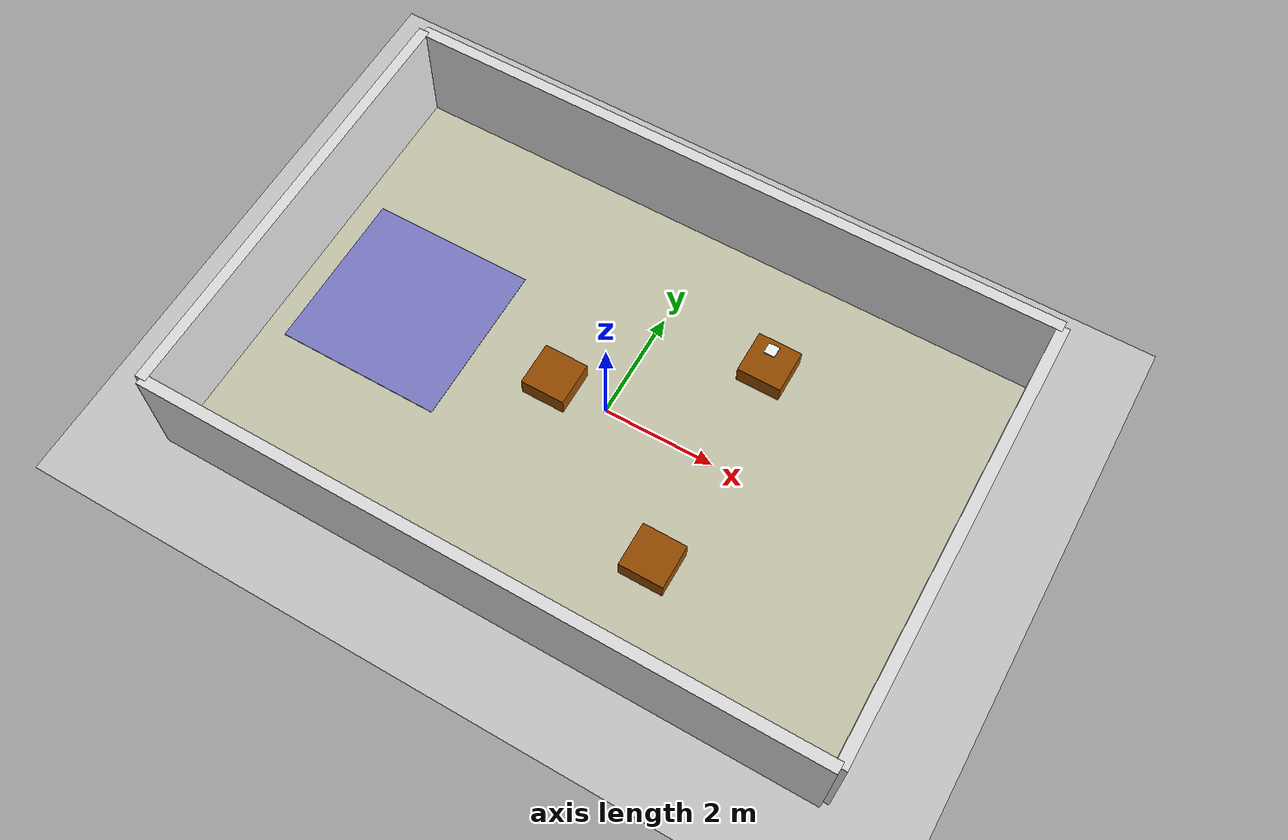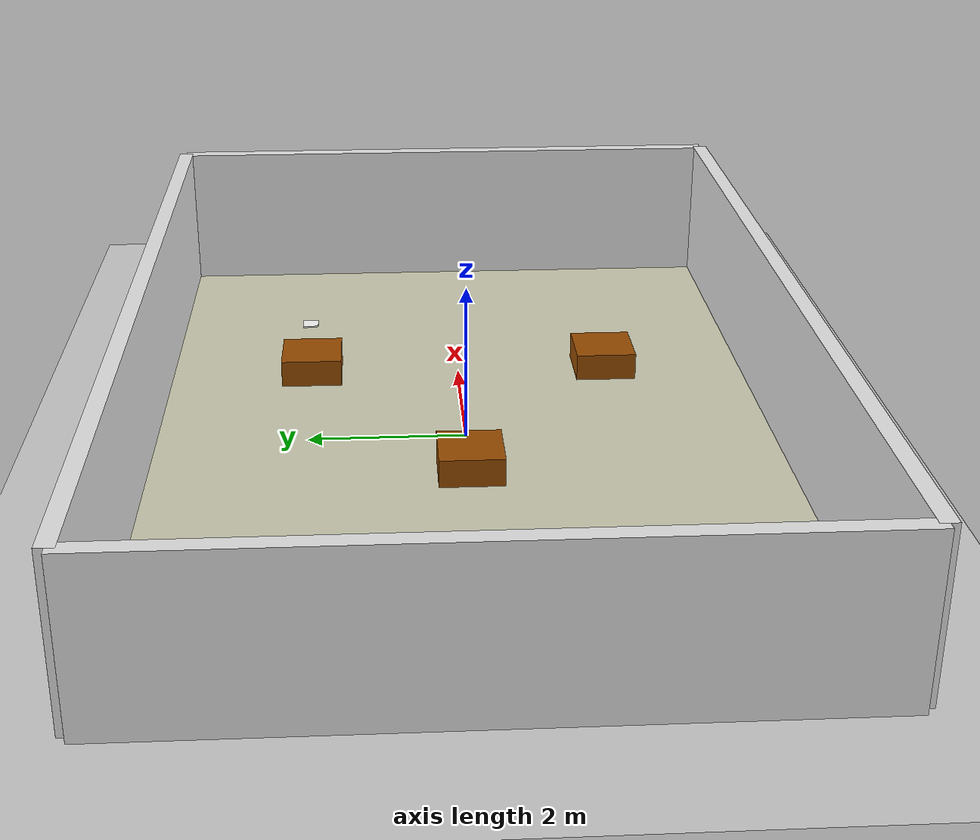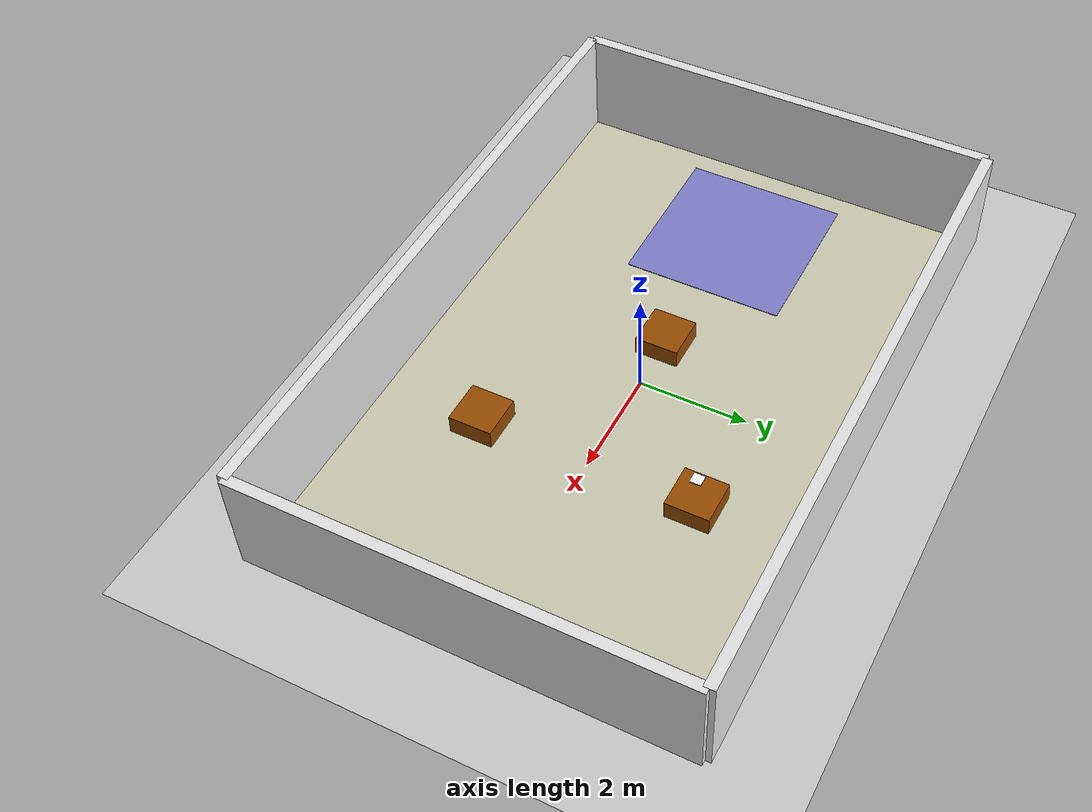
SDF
<?xml version="1.0" ?>
<sdf version="1.6">
  <world name="restaurant">
    <!-- 基本設定 -->
    <include>
      <uri>model://ground_plane</uri>
    </include>

    <include>
      <uri>model://sun</uri>
    </include>

    <!-- 設定物理引擎 -->
    <physics type="ode">
      <real_time_update_rate>1000.0</real_time_update_rate>
      <max_step_size>0.001</max_step_size>
      <real_time_factor>1</real_time_factor>
    </physics>

    <!-- 相機位置 -->
    <gui fullscreen='0'>
      <camera name='user_camera'>
        <pose>7.0 -7.0 5.0 0 0.5 2.3</pose>
        <view_controller>orbit</view_controller>
      </camera>
    </gui>

    <!-- 餐廳地板 -->
    <model name="restaurant_floor">
      <static>true</static>
      <pose>0 0 0.01 0 0 0</pose>
      <link name="floor">
        <collision name="collision">
          <geometry>
            <box>
              <size>12 8 0.02</size>
            </box>
          </geometry>
        </collision>
        <visual name="visual">
          <geometry>
            <box>
              <size>12 8 0.02</size>
            </box>
          </geometry>
          <material>
            <ambient>0.8 0.8 0.7 1</ambient>
            <diffuse>0.8 0.8 0.7 1</diffuse>
          </material>
        </visual>
      </link>
    </model>

    <!-- 餐廳牆壁 -->
    <!-- 前牆 -->
    <model name="wall_front">
      <static>true</static>
      <pose>6 0 1 0 0 0</pose>
      <link name="link">
        <collision name="collision">
          <geometry>
            <box>
              <size>0.2 8 2</size>
            </box>
          </geometry>
        </collision>
        <visual name="visual">
          <geometry>
            <box>
              <size>0.2 8 2</size>
            </box>
          </geometry>
          <material>
            <ambient>0.9 0.9 0.9 1</ambient>
            <diffuse>0.9 0.9 0.9 1</diffuse>
          </material>
        </visual>
      </link>
    </model>

    <!-- 後牆 -->
    <model name="wall_back">
      <static>true</static>
      <pose>-6 0 1 0 0 0</pose>
      <link name="link">
        <collision name="collision">
          <geometry>
            <box>
              <size>0.2 8 2</size>
            </box>
          </geometry>
        </collision>
        <visual name="visual">
          <geometry>
            <box>
              <size>0.2 8 2</size>
            </box>
          </geometry>
          <material>
            <ambient>0.9 0.9 0.9 1</ambient>
            <diffuse>0.9 0.9 0.9 1</diffuse>
          </material>
        </visual>
      </link>
    </model>

    <!-- 左牆 -->
    <model name="wall_left">
      <static>true</static>
      <pose>0 4 1 0 0 0</pose>
      <link name="link">
        <collision name="collision">
          <geometry>
            <box>
              <size>12 0.2 2</size>
            </box>
          </geometry>
        </collision>
        <visual name="visual">
          <geometry>
            <box>
              <size>12 0.2 2</size>
            </box>
          </geometry>
          <material>
            <ambient>0.9 0.9 0.9 1</ambient>
            <diffuse>0.9 0.9 0.9 1</diffuse>
          </material>
        </visual>
      </link>
    </model>

    <!-- 右牆 -->
    <model name="wall_right">
      <static>true</static>
      <pose>0 -4 1 0 0 0</pose>
      <link name="link">
        <collision name="collision">
          <geometry>
            <box>
              <size>12 0.2 2</size>
            </box>
          </geometry>
        </collision>
        <visual name="visual">
          <geometry>
            <box>
              <size>12 0.2 2</size>
            </box>
          </geometry>
          <material>
            <ambient>0.9 0.9 0.9 1</ambient>
            <diffuse>0.9 0.9 0.9 1</diffuse>
          </material>
        </visual>
      </link>
    </model>

    <!-- 廚房區域（用不同顏色標示） -->
    <model name="kitchen_area">
      <static>true</static>
      <pose>-4 0 0.02 0 0 0</pose>
      <link name="link">
        <visual name="visual">
          <geometry>
            <box>
              <size>3 3 0.02</size>
            </box>
          </geometry>
          <material>
            <ambient>0.5 0.5 0.8 1</ambient>
            <diffuse>0.5 0.5 0.8 1</diffuse>
          </material>
        </visual>
      </link>
    </model>

    <!-- 餐桌 1 -->
    <model name="table_1">
      <static>true</static>
      <pose>2 2 0 0 0 0</pose>
      <link name="link">
        <collision name="collision">
          <geometry>
            <box>
              <size>0.8 0.8 0.75</size>
            </box>
          </geometry>
        </collision>
        <visual name="visual">
          <geometry>
            <box>
              <size>0.8 0.8 0.75</size>
            </box>
          </geometry>
          <material>
            <ambient>0.6 0.3 0.0 1</ambient>
            <diffuse>0.6 0.3 0.0 1</diffuse>
          </material>
        </visual>
      </link>
      <!-- 桌號標示 -->
      <link name="number">
        <pose>0 0 0.76 0 0 0</pose>
        <visual name="visual">
          <geometry>
            <box>
              <size>0.2 0.2 0.02</size>
            </box>
          </geometry>
          <material>
            <ambient>1 1 1 1</ambient>
            <diffuse>1 1 1 1</diffuse>
          </material>
        </visual>
      </link>
    </model>

    <!-- 餐桌 2 -->
    <model name="table_2">
      <static>true</static>
      <pose>2 -2 0 0 0 0</pose>
      <link name="link">
        <collision name="collision">
          <geometry>
            <box>
              <size>0.8 0.8 0.75</size>
            </box>
          </geometry>
        </collision>
        <visual name="visual">
          <geometry>
            <box>
              <size>0.8 0.8 0.75</size>
            </box>
          </geometry>
          <material>
            <ambient>0.6 0.3 0.0 1</ambient>
            <diffuse>0.6 0.3 0.0 1</diffuse>
          </material>
        </visual>
      </link>
    </model>

    <!-- 餐桌 3 -->
    <model name="table_3">
      <static>true</static>
      <pose>-1 0 0 0 0 0</pose>
      <link name="link">
        <collision name="collision">
          <geometry>
            <box>
              <size>0.8 0.8 0.75</size>
            </box>
          </geometry>
        </collision>
        <visual name="visual">
          <geometry>
            <box>
              <size>0.8 0.8 0.75</size>
            </box>
          </geometry>
          <material>
            <ambient>0.6 0.3 0.0 1</ambient>
            <diffuse>0.6 0.3 0.0 1</diffuse>
          </material>
        </visual>
      </link>
    </model>

  </world>
</sdf>
